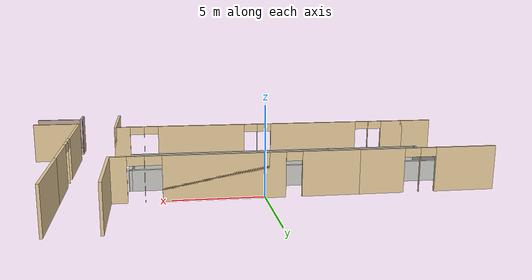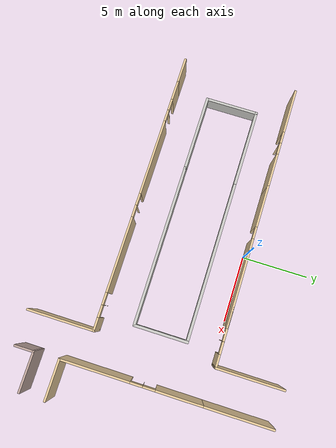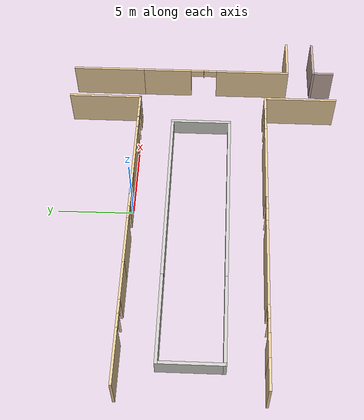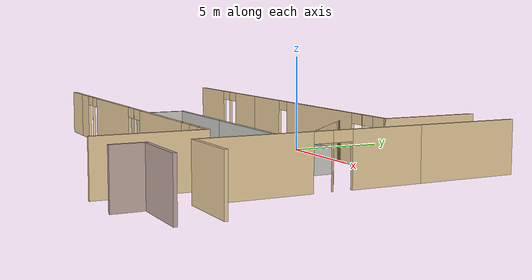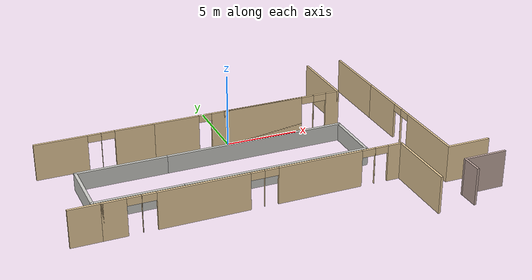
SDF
<?xml version='1.0'?>
<sdf version='1.7'>
  <model name='floor9'>
    <pose>0.37 -4.2945 0 0 -0 0</pose>
    <link name='Wall_12'>
      <collision name='Wall_12_Collision'>
        <geometry>
          <box>
            <size>12.55 0.2 1.2</size>
          </box>
        </geometry>
        <pose>0 0 0.6 0 -0 0</pose>
      </collision>
      <visual name='Wall_12_Visual'>
        <pose>0 0 0.6 0 -0 0</pose>
        <geometry>
          <box>
            <size>12.55 0.2 1.2</size>
          </box>
        </geometry>
        <material>
          <script>
            <uri>file://media/materials/scripts/gazebo.material</uri>
            <name>Gazebo/CeilingTiled</name>
          </script>
          <ambient>0.760784 0.662745 0.627451 1</ambient>
        </material>
        <meta>
          <layer>0</layer>
        </meta>
      </visual>
      <pose>0.676 2.0695 0 0 -0 0</pose>
    </link>
    <link name='Wall_14'>
      <collision name='Wall_14_Collision'>
        <geometry>
          <box>
            <size>4.19 0.2 1.2</size>
          </box>
        </geometry>
        <pose>0 0 0.6 0 -0 0</pose>
      </collision>
      <visual name='Wall_14_Visual'>
        <pose>0 0 0.6 0 -0 0</pose>
        <geometry>
          <box>
            <size>4.19 0.2 1.2</size>
          </box>
        </geometry>
        <material>
          <script>
            <uri>file://media/materials/scripts/gazebo.material</uri>
            <name>Gazebo/CeilingTiled</name>
          </script>
          <ambient>0.760784 0.662745 0.627451 1</ambient>
        </material>
        <meta>
          <layer>0</layer>
        </meta>
      </visual>
      <pose>6.851 0.0745 0 0 -0 -1.5708</pose>
    </link>
    <link name='Wall_19'>
      <collision name='Wall_19_Collision'>
        <geometry>
          <box>
            <size>6.1 0.2 1.2</size>
          </box>
        </geometry>
        <pose>0 0 0.6 0 -0 0</pose>
      </collision>
      <visual name='Wall_19_Visual'>
        <pose>0 0 0.6 0 -0 0</pose>
        <geometry>
          <box>
            <size>6.1 0.2 1.2</size>
          </box>
        </geometry>
        <material>
          <script>
            <uri>file://media/materials/scripts/gazebo.material</uri>
            <name>Gazebo/CeilingTiled</name>
          </script>
          <ambient>0.760784 0.662745 0.627451 1</ambient>
        </material>
        <meta>
          <layer>0</layer>
        </meta>
      </visual>
      <pose>-8.449 2.0695 0 0 -0 3.14159</pose>
    </link>
    <link name='Wall_24'>
      <collision name='Wall_24_Collision'>
        <geometry>
          <box>
            <size>12.55 0.2 1.2</size>
          </box>
        </geometry>
        <pose>0 0 0.6 0 -0 0</pose>
      </collision>
      <visual name='Wall_24_Visual'>
        <pose>0 0 0.6 0 -0 0</pose>
        <geometry>
          <box>
            <size>12.55 0.2 1.2</size>
          </box>
        </geometry>
        <material>
          <script>
            <uri>file://media/materials/scripts/gazebo.material</uri>
            <name>Gazebo/CeilingTiled</name>
          </script>
          <ambient>0.760784 0.662745 0.627451 1</ambient>
        </material>
        <meta>
          <layer>0</layer>
        </meta>
      </visual>
      <pose>0.676 -1.9205 0 0 -0 3.14159</pose>
    </link>
    <link name='Wall_26'>
      <collision name='Wall_26_Collision'>
        <geometry>
          <box>
            <size>6.1 0.2 1.2</size>
          </box>
        </geometry>
        <pose>0 0 0.6 0 -0 0</pose>
      </collision>
      <visual name='Wall_26_Visual'>
        <pose>0 0 0.6 0 -0 0</pose>
        <geometry>
          <box>
            <size>6.1 0.2 1.2</size>
          </box>
        </geometry>
        <material>
          <script>
            <uri>file://media/materials/scripts/gazebo.material</uri>
            <name>Gazebo/CeilingTiled</name>
          </script>
          <ambient>0.760784 0.662745 0.627451 1</ambient>
        </material>
        <meta>
          <layer>0</layer>
        </meta>
      </visual>
      <pose>-8.449 -1.9205 0 0 -0 3.14159</pose>
    </link>
    <link name='Wall_28'>
      <collision name='Wall_28_Collision'>
        <geometry>
          <box>
            <size>4.19 0.2 1.2</size>
          </box>
        </geometry>
        <pose>0 0 0.6 0 -0 0</pose>
      </collision>
      <visual name='Wall_28_Visual'>
        <pose>0 0 0.6 0 -0 0</pose>
        <geometry>
          <box>
            <size>4.19 0.2 1.2</size>
          </box>
        </geometry>
        <material>
          <script>
            <uri>file://media/materials/scripts/gazebo.material</uri>
            <name>Gazebo/CeilingTiled</name>
          </script>
          <ambient>0.760784 0.662745 0.627451 1</ambient>
        </material>
        <meta>
          <layer>0</layer>
        </meta>
      </visual>
      <pose>-11.399 0.0745 0 0 -0 1.5708</pose>
    </link>
    <link name='Wall_306'>
      <collision name='Wall_306_Collision'>
        <geometry>
          <box>
            <size>3 0.15 2.5</size>
          </box>
        </geometry>
        <pose>0 0 1.25 0 -0 0</pose>
      </collision>
      <visual name='Wall_306_Visual'>
        <pose>0 0 1.25 0 -0 0</pose>
        <geometry>
          <box>
            <size>3 0.15 2.5</size>
          </box>
        </geometry>
        <material>
          <script>
            <uri>file://media/materials/scripts/gazebo.material</uri>
            <name>Gazebo/Grey</name>
          </script>
          <ambient>0.921569 0.807843 0.615686 1</ambient>
        </material>
        <meta>
          <layer>0</layer>
        </meta>
      </visual>
      <pose>11.925 -5.9805 0 0 -0 0</pose>
    </link>
    <link name='Wall_31'>
      <pose>-9.45397 4.3695 0 0 -0 3.14159</pose>
      <visual name='Wall_31_Visual_0'>
        <pose>-2.64194 0 1.25 0 -0 0</pose>
        <geometry>
          <box>
            <size>2.65619 0.15 2.5</size>
          </box>
        </geometry>
        <material>
          <script>
            <uri>file://media/materials/scripts/gazebo.material</uri>
            <name>Gazebo/Grey</name>
          </script>
          <ambient>0.921569 0.807843 0.615686 1</ambient>
        </material>
        <meta>
          <layer>0</layer>
        </meta>
      </visual>
      <collision name='Wall_31_Collision_0'>
        <geometry>
          <box>
            <size>2.65619 0.15 2.5</size>
          </box>
        </geometry>
        <pose>-2.64194 0 1.25 0 -0 0</pose>
      </collision>
      <visual name='Wall_31_Visual_1'>
        <pose>-0.413282 0 1.25 0 -0 0</pose>
        <geometry>
          <box>
            <size>0.001129 0.15 2.5</size>
          </box>
        </geometry>
        <material>
          <script>
            <uri>file://media/materials/scripts/gazebo.material</uri>
            <name>Gazebo/Grey</name>
          </script>
          <ambient>0.921569 0.807843 0.615686 1</ambient>
        </material>
        <meta>
          <layer>0</layer>
        </meta>
      </visual>
      <collision name='Wall_31_Collision_1'>
        <geometry>
          <box>
            <size>0.001129 0.15 2.5</size>
          </box>
        </geometry>
        <pose>-0.413282 0 1.25 0 -0 0</pose>
      </collision>
      <visual name='Wall_31_Visual_2'>
        <pose>2.22866 0 1.25 0 -0 0</pose>
        <geometry>
          <box>
            <size>3.48275 0.15 2.5</size>
          </box>
        </geometry>
        <material>
          <script>
            <uri>file://media/materials/scripts/gazebo.material</uri>
            <name>Gazebo/Grey</name>
          </script>
          <ambient>0.921569 0.807843 0.615686 1</ambient>
        </material>
        <meta>
          <layer>0</layer>
        </meta>
      </visual>
      <collision name='Wall_31_Collision_2'>
        <geometry>
          <box>
            <size>3.48275 0.15 2.5</size>
          </box>
        </geometry>
        <pose>2.22866 0 1.25 0 -0 0</pose>
      </collision>
      <visual name='Wall_31_Visual_3'>
        <pose>-0.863847 0 2.25 0 -0 0</pose>
        <geometry>
          <box>
            <size>0.9 0.15 0.5</size>
          </box>
        </geometry>
        <material>
          <script>
            <uri>file://media/materials/scripts/gazebo.material</uri>
            <name>Gazebo/Grey</name>
          </script>
          <ambient>0.921569 0.807843 0.615686 1</ambient>
        </material>
        <meta>
          <layer>0</layer>
        </meta>
      </visual>
      <collision name='Wall_31_Collision_3'>
        <geometry>
          <box>
            <size>0.9 0.15 0.5</size>
          </box>
        </geometry>
        <pose>-0.863847 0 2.25 0 -0 0</pose>
      </collision>
      <visual name='Wall_31_Visual_4'>
        <pose>0.037282 0 2.25 0 -0 0</pose>
        <geometry>
          <box>
            <size>0.9 0.15 0.5</size>
          </box>
        </geometry>
        <material>
          <script>
            <uri>file://media/materials/scripts/gazebo.material</uri>
            <name>Gazebo/Grey</name>
          </script>
          <ambient>0.921569 0.807843 0.615686 1</ambient>
        </material>
        <meta>
          <layer>0</layer>
        </meta>
      </visual>
      <collision name='Wall_31_Collision_4'>
        <geometry>
          <box>
            <size>0.9 0.15 0.5</size>
          </box>
        </geometry>
        <pose>0.037282 0 2.25 0 -0 0</pose>
      </collision>
    </link>
    <link name='Wall_320'>
      <collision name='Wall_320_Collision'>
        <geometry>
          <box>
            <size>5 0.15 2.5</size>
          </box>
        </geometry>
        <pose>0 0 1.25 0 -0 0</pose>
      </collision>
      <visual name='Wall_320_Visual'>
        <pose>0 0 1.25 0 -0 0</pose>
        <geometry>
          <box>
            <size>5 0.15 2.5</size>
          </box>
        </geometry>
        <material>
          <script>
            <uri>file://media/materials/scripts/gazebo.material</uri>
            <name>Gazebo/Grey</name>
          </script>
          <ambient>0.921569 0.807843 0.615686 1</ambient>
        </material>
        <meta>
          <layer>0</layer>
        </meta>
      </visual>
      <pose>8 -6.7945 0 0 -0 -1.5708</pose>
    </link>
    <link name='Wall_324'>
      <collision name='Wall_324_Collision'>
        <geometry>
          <box>
            <size>2.948 0.15 2.5</size>
          </box>
        </geometry>
        <pose>0 0 1.25 0 -0 0</pose>
      </collision>
      <visual name='Wall_324_Visual'>
        <pose>0 0 1.25 0 -0 0</pose>
        <geometry>
          <box>
            <size>2.948 0.15 2.5</size>
          </box>
        </geometry>
        <material>
          <script>
            <uri>file://media/materials/scripts/gazebo.material</uri>
            <name>Gazebo/Grey</name>
          </script>
          <ambient>0.760784 0.662745 0.627451 1</ambient>
        </material>
        <meta>
          <layer>0</layer>
        </meta>
      </visual>
      <pose>11.951 -7.8305 0 0 -0 0</pose>
    </link>
    <link name='Wall_326'>
      <collision name='Wall_326_Collision'>
        <geometry>
          <box>
            <size>1.5 0.15 2.5</size>
          </box>
        </geometry>
        <pose>0 0 1.25 0 -0 0</pose>
      </collision>
      <visual name='Wall_326_Visual'>
        <pose>0 0 1.25 0 -0 0</pose>
        <geometry>
          <box>
            <size>1.5 0.15 2.5</size>
          </box>
        </geometry>
        <material>
          <script>
            <uri>file://media/materials/scripts/gazebo.material</uri>
            <name>Gazebo/Grey</name>
          </script>
          <ambient>0.760784 0.662745 0.627451 1</ambient>
        </material>
        <meta>
          <layer>0</layer>
        </meta>
      </visual>
      <pose>10.552 -8.5055 0 0 -0 -1.5708</pose>
    </link>
    <link name='Wall_328'>
      <collision name='Wall_328_Collision'>
        <geometry>
          <box>
            <size>2.1 0.15 2.5</size>
          </box>
        </geometry>
        <pose>0 0 1.25 0 -0 0</pose>
      </collision>
      <visual name='Wall_328_Visual'>
        <pose>0 0 1.25 0 -0 0</pose>
        <geometry>
          <box>
            <size>2.1 0.15 2.5</size>
          </box>
        </geometry>
        <material>
          <script>
            <uri>file://media/materials/scripts/gazebo.material</uri>
            <name>Gazebo/Grey</name>
          </script>
          <ambient>0.921569 0.807843 0.615686 1</ambient>
        </material>
        <meta>
          <layer>0</layer>
        </meta>
      </visual>
      <pose>-12.375 -4.3695 0 0 -0 3.14159</pose>
    </link>
    <link name='Wall_33'>
      <collision name='Wall_33_Collision'>
        <geometry>
          <box>
            <size>5 0.15 2.5</size>
          </box>
        </geometry>
        <pose>0 0 1.25 0 -0 0</pose>
      </collision>
      <visual name='Wall_33_Visual'>
        <pose>0 0 1.25 0 -0 0</pose>
        <geometry>
          <box>
            <size>5 0.15 2.5</size>
          </box>
        </geometry>
        <material>
          <script>
            <uri>file://media/materials/scripts/gazebo.material</uri>
            <name>Gazebo/Grey</name>
          </script>
          <ambient>0.921569 0.807843 0.615686 1</ambient>
        </material>
        <meta>
          <layer>0</layer>
        </meta>
      </visual>
      <pose>7.851 6.7945 0 0 -0 1.5708</pose>
    </link>
    <link name='Wall_40'>
      <collision name='Wall_40_Collision'>
        <geometry>
          <box>
            <size>5 0.15 2.5</size>
          </box>
        </geometry>
        <pose>0 0 1.25 0 -0 0</pose>
      </collision>
      <visual name='Wall_40_Visual'>
        <pose>0 0 1.25 0 -0 0</pose>
        <geometry>
          <box>
            <size>5 0.15 2.5</size>
          </box>
        </geometry>
        <material>
          <script>
            <uri>file://media/materials/scripts/gazebo.material</uri>
            <name>Gazebo/Grey</name>
          </script>
          <ambient>0.921569 0.807843 0.615686 1</ambient>
        </material>
        <meta>
          <layer>0</layer>
        </meta>
      </visual>
      <pose>10.5 6.7945 0 0 -0 1.5708</pose>
    </link>
    <link name='Wall_45'>
      <pose>-1.7 -4.3695 0 0 -0 0</pose>
      <visual name='Wall_45_Visual_0'>
        <pose>-9.00516 0 1.25 0 -0 0</pose>
        <geometry>
          <box>
            <size>1.53967 0.15 2.5</size>
          </box>
        </geometry>
        <material>
          <script>
            <uri>file://media/materials/scripts/gazebo.material</uri>
            <name>Gazebo/Grey</name>
          </script>
          <ambient>0.921569 0.807843 0.615686 1</ambient>
        </material>
        <meta>
          <layer>0</layer>
        </meta>
      </visual>
      <collision name='Wall_45_Collision_0'>
        <geometry>
          <box>
            <size>1.53967 0.15 2.5</size>
          </box>
        </geometry>
        <pose>-9.00516 0 1.25 0 -0 0</pose>
      </collision>
      <visual name='Wall_45_Visual_1'>
        <pose>-7.32916 0 1.25 0 -0 0</pose>
        <geometry>
          <box>
            <size>0.012326 0.15 2.5</size>
          </box>
        </geometry>
        <material>
          <script>
            <uri>file://media/materials/scripts/gazebo.material</uri>
            <name>Gazebo/Grey</name>
          </script>
          <ambient>0.921569 0.807843 0.615686 1</ambient>
        </material>
        <meta>
          <layer>0</layer>
        </meta>
      </visual>
      <collision name='Wall_45_Collision_1'>
        <geometry>
          <box>
            <size>0.012326 0.15 2.5</size>
          </box>
        </geometry>
        <pose>-7.32916 0 1.25 0 -0 0</pose>
      </collision>
      <visual name='Wall_45_Visual_2'>
        <pose>-3.48326 0 1.25 0 -0 0</pose>
        <geometry>
          <box>
            <size>5.87949 0.15 2.5</size>
          </box>
        </geometry>
        <material>
          <script>
            <uri>file://media/materials/scripts/gazebo.material</uri>
            <name>Gazebo/Grey</name>
          </script>
          <ambient>0.921569 0.807843 0.615686 1</ambient>
        </material>
        <meta>
          <layer>0</layer>
        </meta>
      </visual>
      <collision name='Wall_45_Collision_2'>
        <geometry>
          <box>
            <size>5.87949 0.15 2.5</size>
          </box>
        </geometry>
        <pose>-3.48326 0 1.25 0 -0 0</pose>
      </collision>
      <visual name='Wall_45_Visual_3'>
        <pose>0.359481 0 1.25 0 -0 0</pose>
        <geometry>
          <box>
            <size>0.005984 0.15 2.5</size>
          </box>
        </geometry>
        <material>
          <script>
            <uri>file://media/materials/scripts/gazebo.material</uri>
            <name>Gazebo/Grey</name>
          </script>
          <ambient>0.921569 0.807843 0.615686 1</ambient>
        </material>
        <meta>
          <layer>0</layer>
        </meta>
      </visual>
      <collision name='Wall_45_Collision_3'>
        <geometry>
          <box>
            <size>0.005984 0.15 2.5</size>
          </box>
        </geometry>
        <pose>0.359481 0 1.25 0 -0 0</pose>
      </collision>
      <visual name='Wall_45_Visual_4'>
        <pose>4.10202 0 1.25 0 -0 0</pose>
        <geometry>
          <box>
            <size>5.6791 0.15 2.5</size>
          </box>
        </geometry>
        <material>
          <script>
            <uri>file://media/materials/scripts/gazebo.material</uri>
            <name>Gazebo/Grey</name>
          </script>
          <ambient>0.921569 0.807843 0.615686 1</ambient>
        </material>
        <meta>
          <layer>0</layer>
        </meta>
      </visual>
      <collision name='Wall_45_Collision_4'>
        <geometry>
          <box>
            <size>5.6791 0.15 2.5</size>
          </box>
        </geometry>
        <pose>4.10202 0 1.25 0 -0 0</pose>
      </collision>
      <visual name='Wall_45_Visual_5'>
        <pose>7.8461 0 1.25 0 -0 0</pose>
        <geometry>
          <box>
            <size>0.009064 0.15 2.5</size>
          </box>
        </geometry>
        <material>
          <script>
            <uri>file://media/materials/scripts/gazebo.material</uri>
            <name>Gazebo/Grey</name>
          </script>
          <ambient>0.921569 0.807843 0.615686 1</ambient>
        </material>
        <meta>
          <layer>0</layer>
        </meta>
      </visual>
      <collision name='Wall_45_Collision_5'>
        <geometry>
          <box>
            <size>0.009064 0.15 2.5</size>
          </box>
        </geometry>
        <pose>7.8461 0 1.25 0 -0 0</pose>
      </collision>
      <visual name='Wall_45_Visual_6'>
        <pose>9.26282 0 1.25 0 -0 0</pose>
        <geometry>
          <box>
            <size>1.02436 0.15 2.5</size>
          </box>
        </geometry>
        <material>
          <script>
            <uri>file://media/materials/scripts/gazebo.material</uri>
            <name>Gazebo/Grey</name>
          </script>
          <ambient>0.921569 0.807843 0.615686 1</ambient>
        </material>
        <meta>
          <layer>0</layer>
        </meta>
      </visual>
      <collision name='Wall_45_Collision_6'>
        <geometry>
          <box>
            <size>1.02436 0.15 2.5</size>
          </box>
        </geometry>
        <pose>9.26282 0 1.25 0 -0 0</pose>
      </collision>
      <visual name='Wall_45_Visual_7'>
        <pose>-7.78533 0 2.25 0 -0 0</pose>
        <geometry>
          <box>
            <size>0.9 0.15 0.5</size>
          </box>
        </geometry>
        <material>
          <script>
            <uri>file://media/materials/scripts/gazebo.material</uri>
            <name>Gazebo/Grey</name>
          </script>
          <ambient>0.921569 0.807843 0.615686 1</ambient>
        </material>
        <meta>
          <layer>0</layer>
        </meta>
      </visual>
      <collision name='Wall_45_Collision_7'>
        <geometry>
          <box>
            <size>0.9 0.15 0.5</size>
          </box>
        </geometry>
        <pose>-7.78533 0 2.25 0 -0 0</pose>
      </collision>
      <visual name='Wall_45_Visual_8'>
        <pose>-6.873 0 2.25 0 -0 0</pose>
        <geometry>
          <box>
            <size>0.9 0.15 0.5</size>
          </box>
        </geometry>
        <material>
          <script>
            <uri>file://media/materials/scripts/gazebo.material</uri>
            <name>Gazebo/Grey</name>
          </script>
          <ambient>0.921569 0.807843 0.615686 1</ambient>
        </material>
        <meta>
          <layer>0</layer>
        </meta>
      </visual>
      <collision name='Wall_45_Collision_8'>
        <geometry>
          <box>
            <size>0.9 0.15 0.5</size>
          </box>
        </geometry>
        <pose>-6.873 0 2.25 0 -0 0</pose>
      </collision>
      <visual name='Wall_45_Visual_9'>
        <pose>-0.093511 0 2.25 0 -0 0</pose>
        <geometry>
          <box>
            <size>0.9 0.15 0.5</size>
          </box>
        </geometry>
        <material>
          <script>
            <uri>file://media/materials/scripts/gazebo.material</uri>
            <name>Gazebo/Grey</name>
          </script>
          <ambient>0.921569 0.807843 0.615686 1</ambient>
        </material>
        <meta>
          <layer>0</layer>
        </meta>
      </visual>
      <collision name='Wall_45_Collision_9'>
        <geometry>
          <box>
            <size>0.9 0.15 0.5</size>
          </box>
        </geometry>
        <pose>-0.093511 0 2.25 0 -0 0</pose>
      </collision>
      <visual name='Wall_45_Visual_10'>
        <pose>0.812473 0 2.25 0 -0 0</pose>
        <geometry>
          <box>
            <size>0.9 0.15 0.5</size>
          </box>
        </geometry>
        <material>
          <script>
            <uri>file://media/materials/scripts/gazebo.material</uri>
            <name>Gazebo/Grey</name>
          </script>
          <ambient>0.921569 0.807843 0.615686 1</ambient>
        </material>
        <meta>
          <layer>0</layer>
        </meta>
      </visual>
      <collision name='Wall_45_Collision_10'>
        <geometry>
          <box>
            <size>0.9 0.15 0.5</size>
          </box>
        </geometry>
        <pose>0.812473 0 2.25 0 -0 0</pose>
      </collision>
      <visual name='Wall_45_Visual_11'>
        <pose>7.39157 0 2.25 0 -0 0</pose>
        <geometry>
          <box>
            <size>0.9 0.15 0.5</size>
          </box>
        </geometry>
        <material>
          <script>
            <uri>file://media/materials/scripts/gazebo.material</uri>
            <name>Gazebo/Grey</name>
          </script>
          <ambient>0.921569 0.807843 0.615686 1</ambient>
        </material>
        <meta>
          <layer>0</layer>
        </meta>
      </visual>
      <collision name='Wall_45_Collision_11'>
        <geometry>
          <box>
            <size>0.9 0.15 0.5</size>
          </box>
        </geometry>
        <pose>7.39157 0 2.25 0 -0 0</pose>
      </collision>
      <visual name='Wall_45_Visual_12'>
        <pose>8.30064 0 2.25 0 -0 0</pose>
        <geometry>
          <box>
            <size>0.9 0.15 0.5</size>
          </box>
        </geometry>
        <material>
          <script>
            <uri>file://media/materials/scripts/gazebo.material</uri>
            <name>Gazebo/Grey</name>
          </script>
          <ambient>0.921569 0.807843 0.615686 1</ambient>
        </material>
        <meta>
          <layer>0</layer>
        </meta>
      </visual>
      <collision name='Wall_45_Collision_12'>
        <geometry>
          <box>
            <size>0.9 0.15 0.5</size>
          </box>
        </geometry>
        <pose>8.30064 0 2.25 0 -0 0</pose>
      </collision>
    </link>
    <link name='Wall_52'>
      <pose>10.5 -0.8805 0 0 -0 -1.5708</pose>
      <visual name='Wall_52_Visual_0'>
        <pose>-3.4767 0 1.25 0 -0 0</pose>
        <geometry>
          <box>
            <size>3.39659 0.15 2.5</size>
          </box>
        </geometry>
        <material>
          <script>
            <uri>file://media/materials/scripts/gazebo.material</uri>
            <name>Gazebo/Grey</name>
          </script>
          <ambient>0.921569 0.807843 0.615686 1</ambient>
        </material>
        <meta>
          <layer>0</layer>
        </meta>
      </visual>
      <collision name='Wall_52_Collision_0'>
        <geometry>
          <box>
            <size>3.39659 0.15 2.5</size>
          </box>
        </geometry>
        <pose>-3.4767 0 1.25 0 -0 0</pose>
      </collision>
      <visual name='Wall_52_Visual_1'>
        <pose>-0.875412 0 1.25 0 -0 0</pose>
        <geometry>
          <box>
            <size>0.005996 0.15 2.5</size>
          </box>
        </geometry>
        <material>
          <script>
            <uri>file://media/materials/scripts/gazebo.material</uri>
            <name>Gazebo/Grey</name>
          </script>
          <ambient>0.921569 0.807843 0.615686 1</ambient>
        </material>
        <meta>
          <layer>0</layer>
        </meta>
      </visual>
      <collision name='Wall_52_Collision_1'>
        <geometry>
          <box>
            <size>0.005996 0.15 2.5</size>
          </box>
        </geometry>
        <pose>-0.875412 0 1.25 0 -0 0</pose>
      </collision>
      <visual name='Wall_52_Visual_2'>
        <pose>2.60129 0 1.25 0 -0 0</pose>
        <geometry>
          <box>
            <size>5.14741 0.15 2.5</size>
          </box>
        </geometry>
        <material>
          <script>
            <uri>file://media/materials/scripts/gazebo.material</uri>
            <name>Gazebo/Grey</name>
          </script>
          <ambient>0.921569 0.807843 0.615686 1</ambient>
        </material>
        <meta>
          <layer>0</layer>
        </meta>
      </visual>
      <collision name='Wall_52_Collision_2'>
        <geometry>
          <box>
            <size>5.14741 0.15 2.5</size>
          </box>
        </geometry>
        <pose>2.60129 0 1.25 0 -0 0</pose>
      </collision>
      <visual name='Wall_52_Visual_3'>
        <pose>-1.32841 0 2.25 0 -0 0</pose>
        <geometry>
          <box>
            <size>0.9 0.15 0.5</size>
          </box>
        </geometry>
        <material>
          <script>
            <uri>file://media/materials/scripts/gazebo.material</uri>
            <name>Gazebo/Grey</name>
          </script>
          <ambient>0.921569 0.807843 0.615686 1</ambient>
        </material>
        <meta>
          <layer>0</layer>
        </meta>
      </visual>
      <collision name='Wall_52_Collision_3'>
        <geometry>
          <box>
            <size>0.9 0.15 0.5</size>
          </box>
        </geometry>
        <pose>-1.32841 0 2.25 0 -0 0</pose>
      </collision>
      <visual name='Wall_52_Visual_4'>
        <pose>-0.422414 0 2.25 0 -0 0</pose>
        <geometry>
          <box>
            <size>0.9 0.15 0.5</size>
          </box>
        </geometry>
        <material>
          <script>
            <uri>file://media/materials/scripts/gazebo.material</uri>
            <name>Gazebo/Grey</name>
          </script>
          <ambient>0.921569 0.807843 0.615686 1</ambient>
        </material>
        <meta>
          <layer>0</layer>
        </meta>
      </visual>
      <collision name='Wall_52_Collision_4'>
        <geometry>
          <box>
            <size>0.9 0.15 0.5</size>
          </box>
        </geometry>
        <pose>-0.422414 0 2.25 0 -0 0</pose>
      </collision>
    </link>
    <link name='Wall_8'>
      <pose>1.16102 4.3695 0 0 -0 0</pose>
      <visual name='Wall_8_Visual_0'>
        <pose>-5.15911 0 1.25 0 -0 0</pose>
        <geometry>
          <box>
            <size>3.21174 0.15 2.5</size>
          </box>
        </geometry>
        <material>
          <script>
            <uri>file://media/materials/scripts/gazebo.material</uri>
            <name>Gazebo/Grey</name>
          </script>
          <ambient>0.921569 0.807843 0.615686 1</ambient>
        </material>
        <meta>
          <layer>0</layer>
        </meta>
      </visual>
      <collision name='Wall_8_Collision_0'>
        <geometry>
          <box>
            <size>3.21174 0.15 2.5</size>
          </box>
        </geometry>
        <pose>-5.15911 0 1.25 0 -0 0</pose>
      </collision>
      <visual name='Wall_8_Visual_1'>
        <pose>0.643149 0 1.25 0 -0 0</pose>
        <geometry>
          <box>
            <size>6.59278 0.15 2.5</size>
          </box>
        </geometry>
        <material>
          <script>
            <uri>file://media/materials/scripts/gazebo.material</uri>
            <name>Gazebo/Grey</name>
          </script>
          <ambient>0.921569 0.807843 0.615686 1</ambient>
        </material>
        <meta>
          <layer>0</layer>
        </meta>
      </visual>
      <collision name='Wall_8_Collision_1'>
        <geometry>
          <box>
            <size>6.59278 0.15 2.5</size>
          </box>
        </geometry>
        <pose>0.643149 0 1.25 0 -0 0</pose>
      </collision>
      <visual name='Wall_8_Visual_2'>
        <pose>1.09111 0 1.25 0 -0 0</pose>
        <geometry>
          <box>
            <size>5.69687 0.15 2.5</size>
          </box>
        </geometry>
        <material>
          <script>
            <uri>file://media/materials/scripts/gazebo.material</uri>
            <name>Gazebo/Grey</name>
          </script>
          <ambient>0.921569 0.807843 0.615686 1</ambient>
        </material>
        <meta>
          <layer>0</layer>
        </meta>
      </visual>
      <collision name='Wall_8_Collision_2'>
        <geometry>
          <box>
            <size>5.69687 0.15 2.5</size>
          </box>
        </geometry>
        <pose>1.09111 0 1.25 0 -0 0</pose>
      </collision>
      <visual name='Wall_8_Visual_3'>
        <pose>4.84713 0 1.25 0 -0 0</pose>
        <geometry>
          <box>
            <size>0.015193 0.15 2.5</size>
          </box>
        </geometry>
        <material>
          <script>
            <uri>file://media/materials/scripts/gazebo.material</uri>
            <name>Gazebo/Grey</name>
          </script>
          <ambient>0.921569 0.807843 0.615686 1</ambient>
        </material>
        <meta>
          <layer>0</layer>
        </meta>
      </visual>
      <collision name='Wall_8_Collision_3'>
        <geometry>
          <box>
            <size>0.015193 0.15 2.5</size>
          </box>
        </geometry>
        <pose>4.84713 0 1.25 0 -0 0</pose>
      </collision>
      <visual name='Wall_8_Visual_4'>
        <pose>6.25986 0 1.25 0 -0 0</pose>
        <geometry>
          <box>
            <size>1.01025 0.15 2.5</size>
          </box>
        </geometry>
        <material>
          <script>
            <uri>file://media/materials/scripts/gazebo.material</uri>
            <name>Gazebo/Grey</name>
          </script>
          <ambient>0.921569 0.807843 0.615686 1</ambient>
        </material>
        <meta>
          <layer>0</layer>
        </meta>
      </visual>
      <collision name='Wall_8_Collision_4'>
        <geometry>
          <box>
            <size>1.01025 0.15 2.5</size>
          </box>
        </geometry>
        <pose>6.25986 0 1.25 0 -0 0</pose>
      </collision>
      <visual name='Wall_8_Visual_5'>
        <pose>-3.10528 0 2.25 0 -0 0</pose>
        <geometry>
          <box>
            <size>0.895914 0.15 0.5</size>
          </box>
        </geometry>
        <material>
          <script>
            <uri>file://media/materials/scripts/gazebo.material</uri>
            <name>Gazebo/Grey</name>
          </script>
          <ambient>0.921569 0.807843 0.615686 1</ambient>
        </material>
        <meta>
          <layer>0</layer>
        </meta>
      </visual>
      <collision name='Wall_8_Collision_5'>
        <geometry>
          <box>
            <size>0.895914 0.15 0.5</size>
          </box>
        </geometry>
        <pose>-3.10528 0 2.25 0 -0 0</pose>
      </collision>
      <visual name='Wall_8_Visual_6'>
        <pose>4.38954 0 2.25 0 -0 0</pose>
        <geometry>
          <box>
            <size>0.9 0.15 0.5</size>
          </box>
        </geometry>
        <material>
          <script>
            <uri>file://media/materials/scripts/gazebo.material</uri>
            <name>Gazebo/Grey</name>
          </script>
          <ambient>0.921569 0.807843 0.615686 1</ambient>
        </material>
        <meta>
          <layer>0</layer>
        </meta>
      </visual>
      <collision name='Wall_8_Collision_6'>
        <geometry>
          <box>
            <size>0.9 0.15 0.5</size>
          </box>
        </geometry>
        <pose>4.38954 0 2.25 0 -0 0</pose>
      </collision>
      <visual name='Wall_8_Visual_7'>
        <pose>4.38954 0 2.25 0 -0 0</pose>
        <geometry>
          <box>
            <size>0.9 0.15 0.5</size>
          </box>
        </geometry>
        <material>
          <script>
            <uri>file://media/materials/scripts/gazebo.material</uri>
            <name>Gazebo/Grey</name>
          </script>
          <ambient>0.921569 0.807843 0.615686 1</ambient>
        </material>
        <meta>
          <layer>0</layer>
        </meta>
      </visual>
      <collision name='Wall_8_Collision_7'>
        <geometry>
          <box>
            <size>0.9 0.15 0.5</size>
          </box>
        </geometry>
        <pose>4.38954 0 2.25 0 -0 0</pose>
      </collision>
      <visual name='Wall_8_Visual_8'>
        <pose>5.30473 0 2.25 0 -0 0</pose>
        <geometry>
          <box>
            <size>0.9 0.15 0.5</size>
          </box>
        </geometry>
        <material>
          <script>
            <uri>file://media/materials/scripts/gazebo.material</uri>
            <name>Gazebo/Grey</name>
          </script>
          <ambient>0.921569 0.807843 0.615686 1</ambient>
        </material>
        <meta>
          <layer>0</layer>
        </meta>
      </visual>
      <collision name='Wall_8_Collision_8'>
        <geometry>
          <box>
            <size>0.9 0.15 0.5</size>
          </box>
        </geometry>
        <pose>5.30473 0 2.25 0 -0 0</pose>
      </collision>
    </link>
    <static>1</static>
  </model>
</sdf>
